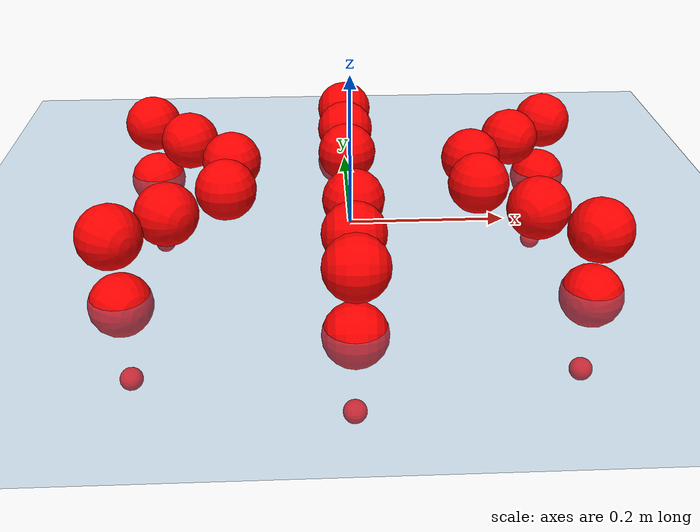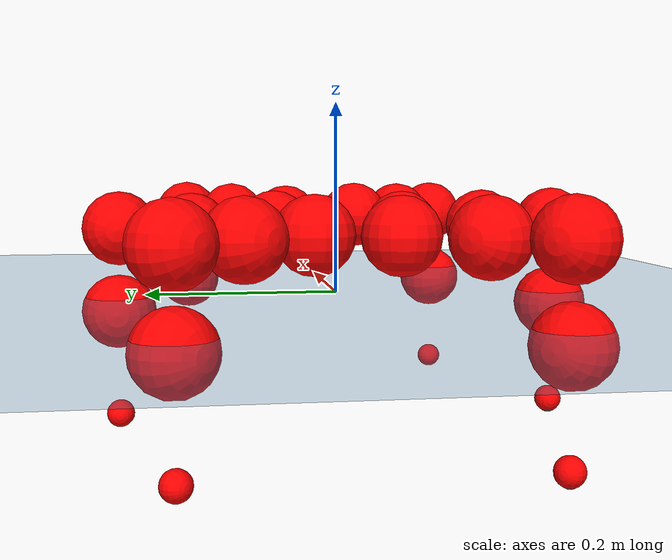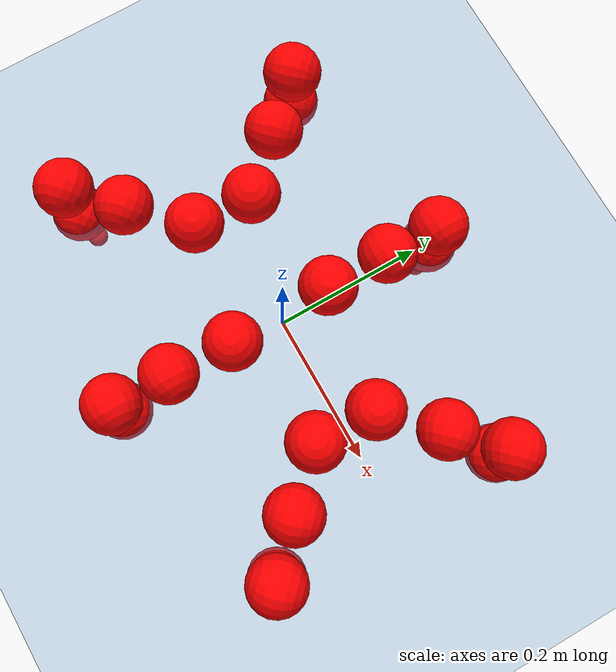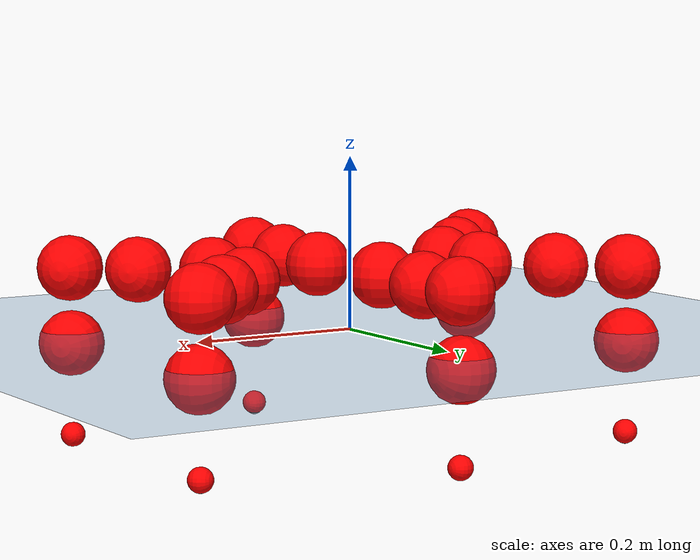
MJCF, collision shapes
<mujoco model="Golem">
  <compiler angle="radian" assetdir="assets" balanceinertia="true" inertiafromgeom="false"/>

  <option timestep="0.005" density="1.2" viscosity="2e-05"/>

  <size nkey="1"/>

  <visual>
    <quality shadowsize="8192"/>
    <map shadowclip="0.5"/>
  </visual>

  <default>
    <default class="/">
      <joint armature="0.01" damping="0.01" frictionloss="0.01"/>
      <geom contype="0" conaffinity="0" group="1" solref="-1000 -80"/>
      <site size="0.01 0.005 0.005" group="5"/>
      <general forcelimited="true" biastype="affine" gainprm="25" biasprm="0 -25 -0.5"/>
      <default class="visual">
        <geom type="mesh" group="2"/>
      </default>
      <default class="collision">
        <geom group="3"/>
      </default>
      <default class="foot">
        <geom size="0.01 0 0" condim="6" group="4" priority="1" solimp="0.015 1 0.01"/>
      </default>
      <default class="reward_collision_sphere">
        <geom group="5" rgba="1 0 0 1"/>
      </default>
    </default>
  </default>

  <asset>
    <texture type="skybox" colorspace="auto" name="//unnamed_texture_0" builtin="gradient" rgb1="0.95 0.95 0.95" rgb2="0.95 0.95 0.95" width="100" height="600"/>
    <texture type="2d" colorspace="auto" name="texplane" builtin="checker" rgb1="0.345 0.575 0.748" rgb2="0.345 0.575 0.748" markrgb="1 1 1" width="512" height="512"/>
    <material name="MatPlane" class="/" texture="texplane" texuniform="true" texrepeat="2 2" specular="0.9"/>
    <mesh name="body" class="/" file="body.stl" scale="0.001 0.001 0.001"/>
    <mesh name="coxa" class="/" file="coxa.stl" scale="0.001 0.001 0.001"/>
    <mesh name="femur" class="/" file="femur.stl" scale="0.001 0.001 0.001"/>
    <mesh name="tibia" class="/" file="tibia.stl" scale="0.001 0.001 0.001"/>
    <mesh name="tarsus" class="/" file="tarsus.stl" scale="0.001 0.001 0.001"/>
  </asset>

  <worldbody>
    <geom name="floor" class="/" size="100 100 0.125" type="plane" group="0" material="MatPlane"/>
    <light name="toplight_shadow" class="/" pos="0 0 5" dir="0.0990148 0.0990148 -0.990148" type="directional" ambient="0.04 0.04 0.04" diffuse="0.55 0.55 0.55" specular="0.12 0.12 0.12"/>
    <light name="toplight_fill" class="/" pos="0 0 5" dir="0.0990148 0.0990148 -0.990148" type="directional" castshadow="false" ambient="0.04 0.04 0.04" diffuse="0.3 0.3 0.3" specular="0.08 0.08 0.08"/>
    <body name="trunk" pos="0.000830434 -0.000663932 -0.00010176" quat="1 -3.76239e-05 -1.92309e-05 -4.22237e-05">
      <inertial pos="0.00319708 -5.42749e-05 -0.00279783" quat="0.999929 -0.00663757 -0.00605623 0.00787351" mass="3.25415" diaginertia="0.0104265 0.00216376 0.0181479"/>
      <joint name="//unnamed_joint_0" type="free"/>
      <geom name="//unnamed_geom_1" class="/" pos="0 0 0.0713267" quat="1 0 0 0" type="mesh" rgba="0.9 0.9 0.9 1" mesh="body"/>
      <site name="imu" class="/" pos="0.124891 -0.00446062 0.10024" size="0.00949502"/>
      <camera name="track" class="/" pos="0 -1.4704 0" quat="0.707107 0.707107 0 0" mode="trackcom"/>
      <camera name="ego_camera" class="/" pos="0.129847 0 0.111448" quat="-0.5 -0.5 0.5 0.5"/>
      <body name="coxa_RR" pos="-0.176555 -0.0601251 0.0700193" quat="0.382744 -0.000133566 0.000167176 -0.923855">
        <inertial pos="-0.000194685 -0.00236805 0.000358502" quat="0.999996 0.00037995 0.00166451 -0.0021106" mass="0.168053" diaginertia="0.0095967 0.0020221 0.0170117"/>
        <joint name="coxa_joint_RR" class="/" pos="0 0 0" axis="0.00363904 -0.0021424 -0.999991" range="-3.19391 3.13581" armature="0.00932578" damping="0" frictionloss="0.00948949"/>
        <geom name="//unnamed_geom_2" class="/" type="mesh" rgba="0.2 0.2 0.2 1" mesh="coxa"/>
        <geom name="//unnamed_geom_3" class="reward_collision_sphere" size="0.0379801" pos="-0.0299648 0 0"/>
        <body name="femur_RR" pos="0.0621479 0.00149029 0.00241103" quat="0.499085 -0.499877 0.500581 0.500455">
          <inertial pos="8.13401e-05 0.000506075 -0.00253903" quat="1 -1.04234e-06 0.000188172 -7.94935e-05" mass="0.166689" diaginertia="0.0098795 0.00208308 0.0171194"/>
          <joint name="femur_joint_RR" class="/" pos="0 0 0" axis="-0.0116031 -0.00625501 -0.999913" stiffness="0.00170582" range="-3.14023 3.15832" armature="0.00943193" damping="0.0025416" frictionloss="0.0103932"/>
          <geom name="//unnamed_geom_4" class="/" type="mesh" rgba="0.9 0.9 0.9 1" mesh="femur"/>
          <geom name="//unnamed_geom_5" class="reward_collision_sphere" size="0.0379801"/>
          <body name="tibia_RR" pos="-0.00235711 -0.0790342 -0.00102868" quat="-2.16999e-05 1 -1.93433e-05 -3.09444e-05">
            <inertial pos="0.000903848 -0.00194332 -0.00074777" quat="0.999952 0.00144147 -0.00171753 0.00949241" mass="0.170866" diaginertia="0.0102946 0.00213896 0.0171987"/>
            <joint name="tibia_joint_RR" class="/" pos="0 0 0" axis="0.0136697 0.00761809 0.999878" stiffness="0.000871065" range="-3.08389 3.13605" armature="0.00952403" damping="0.0186089" frictionloss="0.00883164"/>
            <geom name="//unnamed_geom_6" class="/" type="mesh" rgba="0.2 0.2 0.2 1" mesh="tibia"/>
            <geom name="//unnamed_geom_7" class="reward_collision_sphere" size="0.0379801"/>
            <body name="tarsus_RR" pos="0.0899113 -0.00172304 -0.00273511" quat="0.999999 -0.000545368 -3.40164e-05 -0.00108234">
              <inertial pos="0.0588954 -0.000296334 -0.0028341" quat="0.498509 0.505784 0.490555 0.505001" mass="0.17582" diaginertia="0.00996655 0.00219234 0.0165709"/>
              <joint name="tarsus_joint_RR" class="/" pos="0 0 0" axis="-0.000276431 -0.000614967 1" range="-3.19477 3.15273" armature="0.00916503" damping="0" frictionloss="0.0108258"/>
              <geom name="//unnamed_geom_8" class="/" type="mesh" rgba="0.9 0.9 0.9 1" mesh="tarsus"/>
              <geom name="foot_1" class="foot" size="0.0103208" pos="0.111868 0 0" quat="0 -0.707107 0 0.707107"/>
              <geom name="//unnamed_geom_10" class="reward_collision_sphere" size="0.0379801"/>
              <geom name="//unnamed_geom_11" class="reward_collision_sphere" size="0.0142425" pos="0.107374 0 0"/>
              <site name="foot_1" class="foot" pos="0.111868 0 0" quat="0 -0.707107 0 0.707107" size="0.00949502"/>
            </body>
          </body>
        </body>
      </body>
      <body name="coxa_RM" pos="0.000142544 -0.100388 0.0689699" quat="0.706794 -5.69934e-05 -0.000397127 -0.707419">
        <inertial pos="0.00299301 0.000333144 -0.00235919" quat="0.999999 2.68833e-05 -0.00083829 -0.000681309" mass="0.170984" diaginertia="0.0098602 0.00223036 0.0174463"/>
        <joint name="coxa_joint_RM" class="/" pos="0 0 0" axis="-0.00384004 0.00158606 -0.999991" range="-3.15778 3.12916" armature="0.0109111" damping="0.00721819" frictionloss="0.0101105"/>
        <geom name="//unnamed_geom_12" class="/" type="mesh" rgba="0.2 0.2 0.2 1" mesh="coxa"/>
        <geom name="//unnamed_geom_13" class="reward_collision_sphere" size="0.0379801" pos="-0.0299648 0 0"/>
        <body name="femur_RM" pos="0.0567281 -0.00287697 0.00122561" quat="0.499722 -0.500335 0.500261 0.499682">
          <inertial pos="0.00201161 -0.00285362 0.000482063" quat="0.999986 0.000359239 -0.000708294 0.00527233" mass="0.165873" diaginertia="0.00935218 0.00208729 0.0162531"/>
          <joint name="femur_joint_RM" class="/" pos="0 0 0" axis="-0.00223118 -0.0135595 -0.999906" stiffness="0.00689758" range="-3.14507 3.09249" armature="0.00961791" damping="0.0274229" frictionloss="0.00834987"/>
          <geom name="//unnamed_geom_14" class="/" type="mesh" rgba="0.9 0.9 0.9 1" mesh="femur"/>
          <geom name="//unnamed_geom_15" class="reward_collision_sphere" size="0.0379801"/>
          <body name="tibia_RM" pos="-0.00176874 -0.0771354 -0.00115626" quat="-0.0010826 0.999999 -0.000338249 -0.000725872">
            <inertial pos="-0.00270165 0.00152298 -0.00103313" quat="0.999915 0.00676538 -0.00754213 0.00825013" mass="0.164783" diaginertia="0.00960023 0.00209369 0.0167822"/>
            <joint name="tibia_joint_RM" class="/" pos="0 0 0" axis="0.00369235 -0.00209856 0.999991" range="-3.14725 3.19339" armature="0.00917741" damping="0.0163786" frictionloss="0.00935657"/>
            <geom name="//unnamed_geom_16" class="/" type="mesh" rgba="0.2 0.2 0.2 1" mesh="tibia"/>
            <geom name="//unnamed_geom_17" class="reward_collision_sphere" size="0.0379801"/>
            <body name="tarsus_RM" pos="0.0863284 -0.000368689 0.000678347" quat="1 3.82212e-05 -7.89692e-05 -4.71435e-05">
              <inertial pos="0.0625714 0.0014513 0.000954261" quat="0.501447 0.500178 0.499526 0.498845" mass="0.174124" diaginertia="0.0099331 0.00212363 0.0174243"/>
              <joint name="tarsus_joint_RM" class="/" pos="0 0 0" axis="0.000865657 -0.000843902 0.999999" range="-3.19588 3.08387" armature="0.00939845" damping="0.00462329" frictionloss="0.00815711"/>
              <geom name="//unnamed_geom_18" class="/" type="mesh" rgba="0.9 0.9 0.9 1" mesh="tarsus"/>
              <geom name="foot_2" class="foot" size="0.0105362" pos="0.111868 0 0" quat="0 -0.707107 0 0.707107"/>
              <geom name="//unnamed_geom_20" class="reward_collision_sphere" size="0.0379801"/>
              <geom name="//unnamed_geom_21" class="reward_collision_sphere" size="0.0142425" pos="0.107374 0 0"/>
              <site name="foot_2" class="foot" pos="0.111868 0 0" quat="0 -0.707107 0 0.707107" size="0.00949502"/>
            </body>
          </body>
        </body>
      </body>
      <body name="coxa_RF" pos="0.177499 -0.0643561 0.0741994" quat="0.924006 0.000602256 0.000526046 -0.382378">
        <inertial pos="0.00024719 -0.0023035 0.00293447" quat="0.999932 0.010499 -0.00455222 -0.00222781" mass="0.159443" diaginertia="0.00941929 0.00206861 0.0165421"/>
        <joint name="coxa_joint_RF" class="/" pos="0 0 0" axis="0.00802842 -0.00707802 -0.999943" range="-3.09658 3.18425" armature="0.00815628" damping="0" frictionloss="0.00950478"/>
        <geom name="//unnamed_geom_22" class="/" type="mesh" rgba="0.2 0.2 0.2 1" mesh="coxa"/>
        <geom name="//unnamed_geom_23" class="reward_collision_sphere" size="0.0379801" pos="-0.0299648 0 0"/>
        <body name="femur_RF" pos="0.0588401 -0.00238243 -0.00182021" quat="0.500015 -0.500001 0.500018 0.499965">
          <inertial pos="-0.00280477 0.00219171 -0.000516959" quat="0.999996 -0.000746027 -0.00260141 0.000237464" mass="0.17004" diaginertia="0.00991287 0.00221134 0.0174233"/>
          <joint name="femur_joint_RF" class="/" pos="0 0 0" axis="-0.00374052 -0.00252424 -0.99999" stiffness="0.00422641" range="-3.12057 3.09534" armature="0.00949988" damping="0.00108879" frictionloss="0.00848067"/>
          <geom name="//unnamed_geom_24" class="/" type="mesh" rgba="0.9 0.9 0.9 1" mesh="femur"/>
          <geom name="//unnamed_geom_25" class="reward_collision_sphere" size="0.0379801"/>
          <body name="tibia_RF" pos="0.000141003 -0.0819422 0.00152309" quat="6.18113e-05 1 -8.65367e-05 -3.12992e-05">
            <inertial pos="0.000248149 0.000219885 -0.00174111" quat="0.999915 0.0079545 -0.00940262 -0.00433091" mass="0.167598" diaginertia="0.00984654 0.00206659 0.0176478"/>
            <joint name="tibia_joint_RF" class="/" pos="0 0 0" axis="0.00357296 0.00157098 0.999992" range="-3.13617 3.18637" armature="0.00963488" damping="0.00112929" frictionloss="0.0106798"/>
            <geom name="//unnamed_geom_26" class="/" type="mesh" rgba="0.2 0.2 0.2 1" mesh="tibia"/>
            <geom name="//unnamed_geom_27" class="reward_collision_sphere" size="0.0379801"/>
            <body name="tarsus_RF" pos="0.0873568 -0.000348668 0.000760479" quat="0.999999 0.000264954 -0.00123984 0.000589611">
              <inertial pos="0.0582727 -0.000302508 0.000403883" quat="0.500008 0.500237 0.499445 0.50031" mass="0.175747" diaginertia="0.0101864 0.00215053 0.017346"/>
              <joint name="tarsus_joint_RF" class="/" pos="0 0 0" axis="-0.000502178 0.013031 0.999915" stiffness="0.0239358" range="-3.08463 3.13614" armature="0.00919594" damping="0.00175937" frictionloss="0.00919791"/>
              <geom name="//unnamed_geom_28" class="/" type="mesh" rgba="0.9 0.9 0.9 1" mesh="tarsus"/>
              <geom name="foot_3" class="foot" size="0.00918781" pos="0.111868 0 0" quat="0 -0.707107 0 0.707107"/>
              <geom name="//unnamed_geom_30" class="reward_collision_sphere" size="0.0379801"/>
              <geom name="//unnamed_geom_31" class="reward_collision_sphere" size="0.0142425" pos="0.107374 0 0"/>
              <site name="foot_3" class="foot" pos="0.111868 0 0" quat="0 -0.707107 0 0.707107" size="0.00949502"/>
            </body>
          </body>
        </body>
      </body>
      <body name="coxa_LR" pos="-0.174606 0.0631374 0.0712269" quat="0.382724 -0.000267979 6.93028e-05 0.923863">
        <inertial pos="-0.00266249 -0.00307013 0.001376" quat="0.9999 -0.00241768 0.0121711 -0.00673903" mass="0.163608" diaginertia="0.00977365 0.00199869 0.0162506"/>
        <joint name="coxa_joint_LR" class="/" pos="0 0 0" axis="7.34622e-05 3.62666e-05 -1" stiffness="0.00971299" range="-3.18884 3.17933" armature="0.0103238" damping="0.00389735" frictionloss="0.00915039"/>
        <geom name="//unnamed_geom_32" class="/" type="mesh" rgba="0.2 0.2 0.2 1" mesh="coxa"/>
        <geom name="//unnamed_geom_33" class="reward_collision_sphere" size="0.0379801" pos="-0.0299648 0 0"/>
        <body name="femur_LR" pos="0.0604112 -0.00432186 0.00106132" quat="0.500205 -0.500047 0.500024 0.499724">
          <inertial pos="-0.00103025 -0.00134394 -0.000987247" quat="0.999999 -0.000915907 0.000245088 -0.000435183" mass="0.171273" diaginertia="0.00972034 0.00223067 0.0168679"/>
          <joint name="femur_joint_LR" class="/" pos="0 0 0" axis="0.000212629 0.00171127 0.999999" range="-3.09088 3.1392" armature="0.00997982" damping="0.00934294" frictionloss="0.00952923"/>
          <geom name="//unnamed_geom_34" class="/" type="mesh" rgba="0.9 0.9 0.9 1" mesh="femur"/>
          <geom name="//unnamed_geom_35" class="reward_collision_sphere" size="0.0379801"/>
          <body name="tibia_LR" pos="-0.00096992 -0.0833843 -0.00201216" quat="0.000741785 0.999999 0.000731127 0.00069817">
            <inertial pos="0.00254901 -0.00276326 -0.0017759" quat="0.999915 0.00871555 -0.000867797 0.00965927" mass="0.168643" diaginertia="0.00957303 0.0020727 0.0171201"/>
            <joint name="tibia_joint_LR" class="/" pos="0 0 0" axis="-0.00233471 0.00861134 -0.99996" range="-3.09102 3.18698" armature="0.00990291" damping="0" frictionloss="0.00959393"/>
            <geom name="//unnamed_geom_36" class="/" type="mesh" rgba="0.2 0.2 0.2 1" mesh="tibia"/>
            <geom name="//unnamed_geom_37" class="reward_collision_sphere" size="0.0379801"/>
            <body name="tarsus_LR" pos="0.0858089 2.67904e-05 -0.00119903" quat="0.999999 0.000393793 0.000186661 0.0013194">
              <inertial pos="0.0598391 -0.00179419 -0.00230919" quat="0.501392 0.498091 0.494706 0.505744" mass="0.171803" diaginertia="0.0102176 0.00209913 0.0167693"/>
              <joint name="tarsus_joint_LR" class="/" pos="0 0 0" axis="-0.0126829 -0.000208978 -0.99992" range="-3.17587 3.08601" armature="0.00820223" damping="0" frictionloss="0.00825691"/>
              <geom name="//unnamed_geom_38" class="/" type="mesh" rgba="0.9 0.9 0.9 1" mesh="tarsus"/>
              <geom name="foot_4" class="foot" size="0.0100554" pos="0.111868 0 0" quat="0.707107 0 -0.707107 0"/>
              <geom name="//unnamed_geom_40" class="reward_collision_sphere" size="0.0379801"/>
              <geom name="//unnamed_geom_41" class="reward_collision_sphere" size="0.0142425" pos="0.107374 0 0"/>
              <site name="foot_4" class="foot" pos="0.111868 0 0" quat="0.707107 0 -0.707107 0" size="0.00949502"/>
            </body>
          </body>
        </body>
      </body>
      <body name="coxa_LM" pos="-0.00231553 0.0965963 0.0700903" quat="0.707161 0.000211955 -0.000265212 0.707053">
        <inertial pos="-0.000486277 -0.00283763 0.00178779" quat="0.999917 -0.00352849 0.0123509 0.00130133" mass="0.168979" diaginertia="0.0102625 0.0022008 0.0175777"/>
        <joint name="coxa_joint_LM" class="/" pos="0 0 0" axis="0.00652999 -0.00340493 -0.999973" range="-3.14237 3.13714" armature="0.00985451" damping="0.0144451" frictionloss="0.0107553"/>
        <geom name="//unnamed_geom_42" class="/" type="mesh" rgba="0.2 0.2 0.2 1" mesh="coxa"/>
        <geom name="//unnamed_geom_43" class="reward_collision_sphere" size="0.0379801" pos="-0.0299648 0 0"/>
        <body name="femur_LM" pos="0.0556129 -0.000603297 -0.00205603" quat="0.499874 -0.500176 0.49988 0.500069">
          <inertial pos="0.0027936 0.000541855 -0.000337393" quat="0.9999 -0.0017817 0.0101977 0.00961316" mass="0.18121" diaginertia="0.00998179 0.00227926 0.0176386"/>
          <joint name="femur_joint_LM" class="/" pos="0 0 0" axis="0.00114155 0.0025986 0.999996" range="-3.12974 3.11905" armature="0.010025" damping="0.0140976" frictionloss="0.00816253"/>
          <geom name="//unnamed_geom_44" class="/" type="mesh" rgba="0.9 0.9 0.9 1" mesh="femur"/>
          <geom name="//unnamed_geom_45" class="reward_collision_sphere" size="0.0379801"/>
          <body name="tibia_LM" pos="-0.00159707 -0.073574 -0.00120828" quat="-0.000804531 0.999999 -0.000636013 -0.000749862">
            <inertial pos="0.002727 -0.000513307 -0.00266683" quat="0.999924 0.00161061 0.0107856 0.00572974" mass="0.174663" diaginertia="0.0101098 0.00222031 0.0173079"/>
            <joint name="tibia_joint_LM" class="/" pos="0 0 0" axis="-0.0120018 0.00660557 -0.999906" range="-3.14732 3.13891" armature="0.00927559" damping="0.0042905" frictionloss="0.00817707"/>
            <geom name="//unnamed_geom_46" class="/" type="mesh" rgba="0.2 0.2 0.2 1" mesh="tibia"/>
            <geom name="//unnamed_geom_47" class="reward_collision_sphere" size="0.0379801"/>
            <body name="tarsus_LM" pos="0.0858256 0.00116025 -0.00120746" quat="0.999999 -0.000936673 -0.000385551 0.000592179">
              <inertial pos="0.0597408 0.000749798 0.00247292" quat="0.509588 0.497352 0.499848 0.493066" mass="0.179066" diaginertia="0.01027 0.00213749 0.0173976"/>
              <joint name="tarsus_joint_LM" class="/" pos="0 0 0" axis="-0.00379326 -0.00673863 -0.99997" stiffness="0.00755576" range="-3.15948 3.15698" armature="0.00986418" damping="0" frictionloss="0.0106752"/>
              <geom name="//unnamed_geom_48" class="/" type="mesh" rgba="0.9 0.9 0.9 1" mesh="tarsus"/>
              <geom name="foot_5" class="foot" size="0.0097928" pos="0.111868 0 0" quat="0.707107 0 -0.707107 0"/>
              <geom name="//unnamed_geom_50" class="reward_collision_sphere" size="0.0379801"/>
              <geom name="//unnamed_geom_51" class="reward_collision_sphere" size="0.0142425" pos="0.107374 0 0"/>
              <site name="foot_5" class="foot" pos="0.111868 0 0" quat="0.707107 0 -0.707107 0" size="0.00949502"/>
            </body>
          </body>
        </body>
      </body>
      <body name="coxa_LF" pos="0.179837 0.0605181 0.0712692" quat="0.923934 -2.67966e-05 7.70714e-05 0.382553">
        <inertial pos="0.00111992 -0.000196837 0.00274018" quat="0.9999 -0.000535391 -0.0135249 -0.00411258" mass="0.166455" diaginertia="0.00969938 0.00222551 0.0167038"/>
        <joint name="coxa_joint_LF" class="/" pos="0 0 0" axis="0.00758689 -0.0142424 -0.99987" range="-3.12296 3.13955" armature="0.0080852" damping="0.000352358" frictionloss="0.0101743"/>
        <geom name="//unnamed_geom_52" class="/" type="mesh" rgba="0.2 0.2 0.2 1" mesh="coxa"/>
        <geom name="//unnamed_geom_53" class="reward_collision_sphere" size="0.0379801" pos="-0.0299648 0 0"/>
        <body name="femur_LF" pos="0.0580091 -0.000605077 0.00155938" quat="0.500002 -0.49979 0.500177 0.500031">
          <inertial pos="-0.00165543 -0.000921962 0.0013499" quat="0.999989 -0.00378481 -0.000197423 -0.00285087" mass="0.165635" diaginertia="0.0101696 0.00210581 0.0171764"/>
          <joint name="femur_joint_LF" class="/" pos="0 0 0" axis="-0.000308953 -0.000886492 1" range="-3.1485 3.1531" armature="0.0107501" damping="0.0121807" frictionloss="0.00949335"/>
          <geom name="//unnamed_geom_54" class="/" type="mesh" rgba="0.9 0.9 0.9 1" mesh="femur"/>
          <geom name="//unnamed_geom_55" class="reward_collision_sphere" size="0.0379801"/>
          <body name="tibia_LF" pos="-0.000908935 -0.0797604 -0.0015351" quat="-0.000722822 0.999999 -0.00090159 0.000563752">
            <inertial pos="-0.00171465 -0.00137477 0.00161229" quat="1 0.000335004 -9.25847e-05 0.000255602" mass="0.171599" diaginertia="0.00954956 0.00210767 0.0171231"/>
            <joint name="tibia_joint_LF" class="/" pos="0 0 0" axis="-0.00365317 -0.00114746 -0.999993" range="-3.14541 3.11805" armature="0.0109691" damping="0" frictionloss="0.00952598"/>
            <geom name="//unnamed_geom_56" class="/" type="mesh" rgba="0.2 0.2 0.2 1" mesh="tibia"/>
            <geom name="//unnamed_geom_57" class="reward_collision_sphere" size="0.0379801"/>
            <body name="tarsus_LF" pos="0.0852562 -0.00115931 0.00152171" quat="1 0.000295345 -0.000165678 3.53223e-05">
              <inertial pos="0.0596275 0.00301509 0.000796425" quat="0.496021 0.496448 0.511767 0.495578" mass="0.161827" diaginertia="0.00991587 0.00203138 0.0172285"/>
              <joint name="tarsus_joint_LF" class="/" pos="0 0 0" axis="0.00911703 0.00486255 -0.999947" range="-3.14627 3.14443" armature="0.0109619" damping="0.0058921" frictionloss="0.00863625"/>
              <geom name="//unnamed_geom_58" class="/" type="mesh" rgba="0.9 0.9 0.9 1" mesh="tarsus"/>
              <geom name="foot_6" class="foot" size="0.00991591" pos="0.111868 0 0" quat="0.707107 0 -0.707107 0"/>
              <geom name="//unnamed_geom_60" class="reward_collision_sphere" size="0.0379801"/>
              <geom name="//unnamed_geom_61" class="reward_collision_sphere" size="0.0142425" pos="0.107374 0 0"/>
              <site name="foot_6" class="foot" pos="0.111868 0 0" quat="0.707107 0 -0.707107 0" size="0.00949502"/>
            </body>
          </body>
        </body>
      </body>
    </body>
  </worldbody>

  <contact>
    <pair class="/" geom1="floor" geom2="foot_1" name="//unnamed_contact_0"/>
    <pair class="/" geom1="floor" geom2="foot_2" name="//unnamed_contact_1"/>
    <pair class="/" geom1="floor" geom2="foot_3" name="//unnamed_contact_2"/>
    <pair class="/" geom1="floor" geom2="foot_4" name="//unnamed_contact_3"/>
    <pair class="/" geom1="floor" geom2="foot_5" name="//unnamed_contact_4"/>
    <pair class="/" geom1="floor" geom2="foot_6" name="//unnamed_contact_5"/>
  </contact>

  <actuator>
    <general name="coxa_joint_RR" class="/" joint="coxa_joint_RR" forcerange="-6.62445 6.62445" gainprm="24.4146" biasprm="0 -24.4146 -0.477419"/>
    <general name="femur_joint_RR" class="/" joint="femur_joint_RR" forcerange="-7.20514 7.20514" gainprm="24.4146" biasprm="0 -24.4146 -0.477419"/>
    <general name="tibia_joint_RR" class="/" joint="tibia_joint_RR" forcerange="-6.79335 6.79335" gainprm="24.4146" biasprm="0 -24.4146 -0.477419"/>
    <general name="tarsus_joint_RR" class="/" joint="tarsus_joint_RR" forcerange="-7.59899 7.59899" gainprm="24.4146" biasprm="0 -24.4146 -0.477419"/>
    <general name="coxa_joint_RM" class="/" joint="coxa_joint_RM" forcerange="-6.65572 6.65572" gainprm="24.4146" biasprm="0 -24.4146 -0.477419"/>
    <general name="femur_joint_RM" class="/" joint="femur_joint_RM" forcerange="-6.96997 6.96997" gainprm="24.4146" biasprm="0 -24.4146 -0.477419"/>
    <general name="tibia_joint_RM" class="/" joint="tibia_joint_RM" forcerange="-7.06801 7.06801" gainprm="24.4146" biasprm="0 -24.4146 -0.477419"/>
    <general name="tarsus_joint_RM" class="/" joint="tarsus_joint_RM" forcerange="-7.45184 7.45184" gainprm="24.4146" biasprm="0 -24.4146 -0.477419"/>
    <general name="coxa_joint_RF" class="/" joint="coxa_joint_RF" forcerange="-7.55701 7.55701" gainprm="24.4146" biasprm="0 -24.4146 -0.477419"/>
    <general name="femur_joint_RF" class="/" joint="femur_joint_RF" forcerange="-6.35379 6.35379" gainprm="24.4146" biasprm="0 -24.4146 -0.477419"/>
    <general name="tibia_joint_RF" class="/" joint="tibia_joint_RF" forcerange="-7.64379 7.64379" gainprm="24.4146" biasprm="0 -24.4146 -0.477419"/>
    <general name="tarsus_joint_RF" class="/" joint="tarsus_joint_RF" forcerange="-6.20233 6.20233" gainprm="24.4146" biasprm="0 -24.4146 -0.477419"/>
    <general name="coxa_joint_LR" class="/" joint="coxa_joint_LR" forcerange="-6.25504 6.25504" gainprm="24.4146" biasprm="0 -24.4146 -0.477419"/>
    <general name="femur_joint_LR" class="/" joint="femur_joint_LR" forcerange="-6.85821 6.85821" gainprm="24.4146" biasprm="0 -24.4146 -0.477419"/>
    <general name="tibia_joint_LR" class="/" joint="tibia_joint_LR" forcerange="-6.95822 6.95822" gainprm="24.4146" biasprm="0 -24.4146 -0.477419"/>
    <general name="tarsus_joint_LR" class="/" joint="tarsus_joint_LR" forcerange="-6.25133 6.25133" gainprm="24.4146" biasprm="0 -24.4146 -0.477419"/>
    <general name="coxa_joint_LM" class="/" joint="coxa_joint_LM" forcerange="-7.11233 7.11233" gainprm="24.4146" biasprm="0 -24.4146 -0.477419"/>
    <general name="femur_joint_LM" class="/" joint="femur_joint_LM" forcerange="-6.22135 6.22135" gainprm="24.4146" biasprm="0 -24.4146 -0.477419"/>
    <general name="tibia_joint_LM" class="/" joint="tibia_joint_LM" forcerange="-6.56263 6.56263" gainprm="24.4146" biasprm="0 -24.4146 -0.477419"/>
    <general name="tarsus_joint_LM" class="/" joint="tarsus_joint_LM" forcerange="-7.04695 7.04695" gainprm="24.4146" biasprm="0 -24.4146 -0.477419"/>
    <general name="coxa_joint_LF" class="/" joint="coxa_joint_LF" forcerange="-6.25443 6.25443" gainprm="24.4146" biasprm="0 -24.4146 -0.477419"/>
    <general name="femur_joint_LF" class="/" joint="femur_joint_LF" forcerange="-6.25179 6.25179" gainprm="24.4146" biasprm="0 -24.4146 -0.477419"/>
    <general name="tibia_joint_LF" class="/" joint="tibia_joint_LF" forcerange="-7.60548 7.60548" gainprm="24.4146" biasprm="0 -24.4146 -0.477419"/>
    <general name="tarsus_joint_LF" class="/" joint="tarsus_joint_LF" forcerange="-6.6237 6.6237" gainprm="24.4146" biasprm="0 -24.4146 -0.477419"/>
  </actuator>

  <sensor>
    <gyro site="imu" name="imu_angular_velocity"/>
    <velocimeter site="imu" name="imu_linear_velocity"/>
    <framelinvel objtype="site" objname="foot_1" name="foot_1_global_linear_velocity"/>
    <framelinvel objtype="site" objname="foot_2" name="foot_2_global_linear_velocity"/>
    <framelinvel objtype="site" objname="foot_3" name="foot_3_global_linear_velocity"/>
    <framelinvel objtype="site" objname="foot_4" name="foot_4_global_linear_velocity"/>
    <framelinvel objtype="site" objname="foot_5" name="foot_5_global_linear_velocity"/>
    <framelinvel objtype="site" objname="foot_6" name="foot_6_global_linear_velocity"/>
  </sensor>

  <keyframe>
    <key name="home" qpos="0 0 0.1457 1 0 0 0 0 0 0 0 0 0 0 0 0 0 0 0 0 0 0 0 0 0 0 0 0 0 0 0"/>
  </keyframe>
</mujoco>
